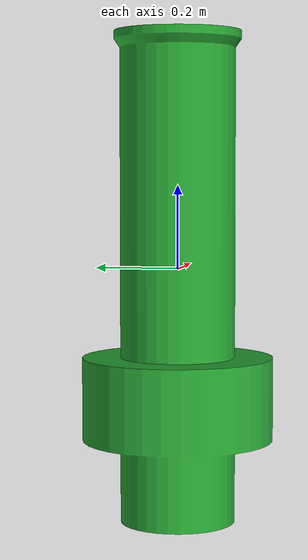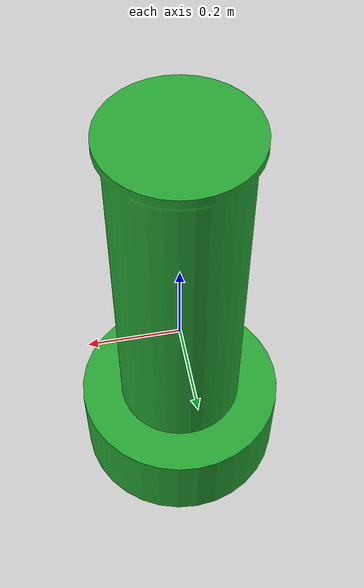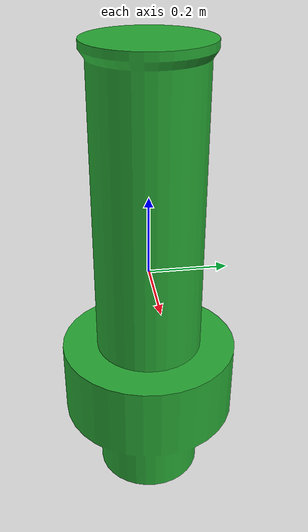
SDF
<?xml version="1.0" ?>
<sdf version="1.6">
  <model name="surmark950400">
    <link name="link">
      <inertial>
        <pose>0 0 -10 0 0 0</pose>
        <mass>20.86</mass>
        <inertia>
          <ixx>3.042</ixx>
          <ixy>0</ixy>
          <ixz>0</ixz>
          <iyy>3.042</iyy>
          <iyz>0</iyz>
          <izz>0.651875</izz>
        </inertia>
      </inertial>
      <collision name="collision_inner">
        <pose>0 0 -0.02 0 0 0</pose>
        <geometry>
          <cylinder>
            <radius>0.15</radius>
            <length>1.18</length>
          </cylinder>
        </geometry>
      </collision>
      <collision name="collision_outer">
        <pose>0 0 -0.31 0 0 0</pose>
        <geometry>
          <cylinder>
            <radius>0.24</radius>
            <length>0.2</length>
          </cylinder>
        </geometry>
      </collision>
      <visual name="visual">
        <geometry>
	        <mesh><uri>model://surmark950400/mesh/surmark950400.dae</uri></mesh>
        </geometry>
        <material>
          <script>
            <uri>model://surmark950400/materials/scripts/surmark950400.material</uri>
            <name>surmark950400/Green</name>
          </script>
        </material>
      </visual>
    </link>

    <plugin name="BuoyancyPlugin" filename="libbuoyancy_gazebo_plugin.so">
      <wave_model>ocean_waves</wave_model>
      <fluid_density>1000</fluid_density>
      <fluid_level>0.0</fluid_level>
      <linear_drag>25.0</linear_drag>
      <angular_drag>2.0</angular_drag>
      <buoyancy name="buoyancy_inner_top">
        <link_name>link</link_name>
        <pose>0 0 0.18 0 0 0</pose>
        <geometry>
          <cylinder>
            <radius>0.13</radius>
            <length>0.77</length>
          </cylinder>
        </geometry>
      </buoyancy>
      <buoyancy name="buoyancy_inner_bottom">
        <link_name>link</link_name>
        <pose>0 0 -0.52 0 0 0</pose>
        <geometry>
          <cylinder>
            <radius>0.13</radius>
            <length>0.2</length>
          </cylinder>
        </geometry>
      </buoyancy>
      <buoyancy name="buoyancy_outer">
        <link_name>link</link_name>
        <pose>0 0 -0.31 0 0 0</pose>
        <geometry>
          <cylinder>
            <radius>0.225</radius>
            <length>0.2</length>
          </cylinder>
        </geometry>
      </buoyancy>
    </plugin>

  </model>
</sdf>
